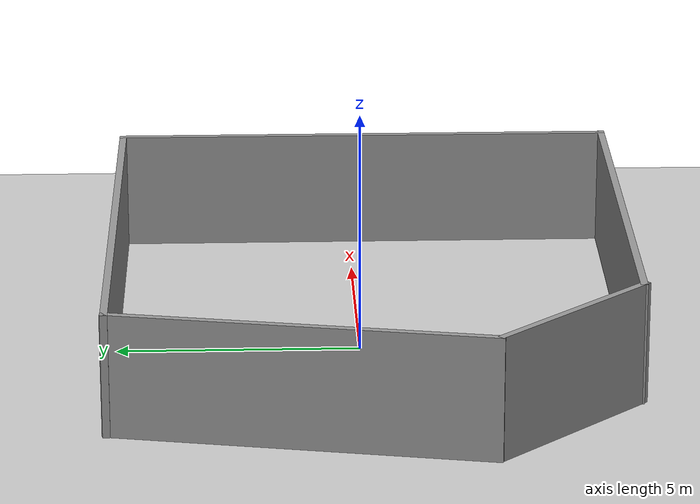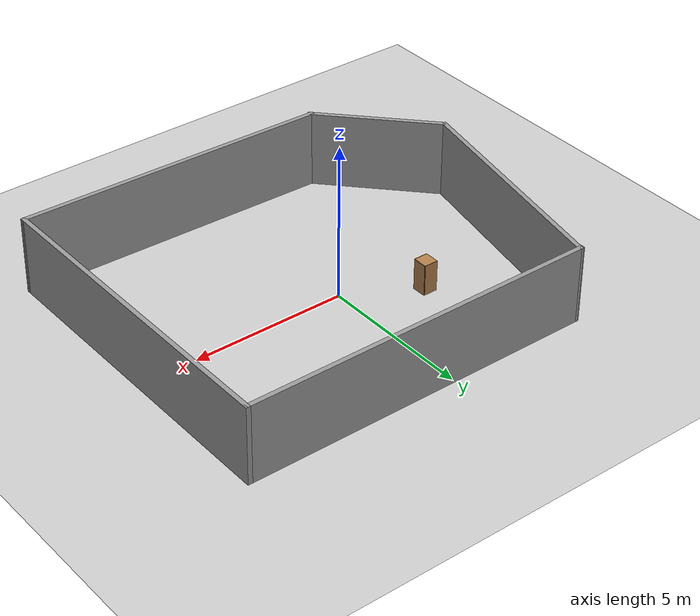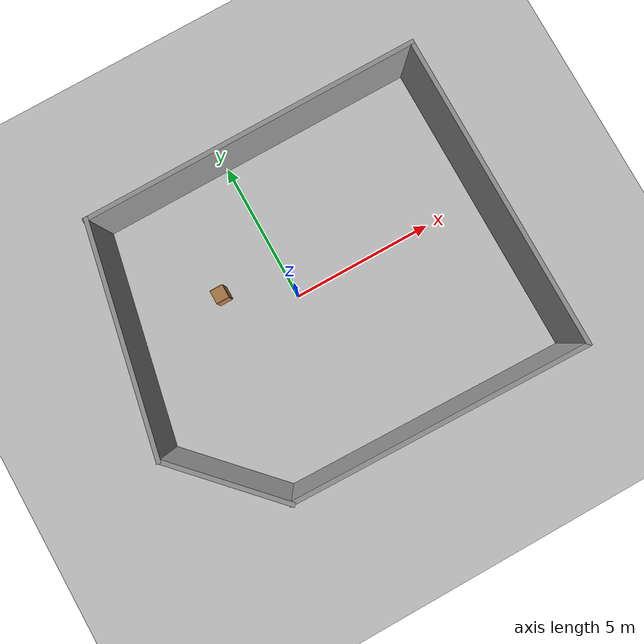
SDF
<sdf version="1.7">
 <world name="default">
  <light name="sun" type="directional">
   <pose>0 0 10 0 -0 0</pose>
   <diffuse>0.8 0.8 0.8 1</diffuse>
   <specular>0.2 0.2 0.2 1</specular>
   <attenuation>
    <range>1000</range>
    <constant>0.9</constant>
    <linear>0.01</linear>
    <quadratic>0.001</quadratic>
   </attenuation>
   <direction>-0.5 0.1 -0.9</direction>
   <spot><inner_angle>0</inner_angle><outer_angle>0</outer_angle><falloff>0</falloff></spot>
  </light>
  <model name="ground_plane">
   <static>1</static>
   <link name="link">
    <collision name="collision">
     <geometry><plane><normal>0 0 1</normal><size>100 100</size></plane></geometry>
     <surface><friction><ode><mu>100</mu><mu2>50</mu2></ode></friction></surface>
    </collision>
    <visual name="visual">
     <cast_shadows>0</cast_shadows>
     <geometry><plane><normal>0 0 1</normal><size>100 100</size></plane></geometry>
     <material>
      <script><uri>file://media/materials/scripts/gazebo.material</uri><name>Gazebo/Grey</name></script>
     </material>
    </visual>
   </link>
  </model>
  <gravity>0 0 -9.8</gravity>
  <magnetic_field>6e-06 2.3e-05 -4.2e-05</magnetic_field>
  <atmosphere type="adiabatic"/>
  <physics type="ode">
   <max_step_size>0.001</max_step_size>
   <real_time_factor>1</real_time_factor>
   <real_time_update_rate>1000</real_time_update_rate>
  </physics>
  <scene><ambient>0.4 0.4 0.4 1</ambient><background>0.7 0.7 0.7 1</background><shadows>1</shadows></scene>
  <spherical_coordinates>
   <surface_model>EARTH_WGS84</surface_model>
   <latitude_deg>0</latitude_deg>
   <longitude_deg>0</longitude_deg>
   <elevation>0</elevation>
   <heading_deg>0</heading_deg>
  </spherical_coordinates>
  <model name="assig3">
   <pose>0.419571 -0.312356 0 0 -0 0</pose>
   <link name="Wall_0">
    <collision name="Wall_0_Collision">
     <geometry><box><size>7.75358 0.15 2.5</size></box></geometry>
     <pose>0 0 1.25 0 -0 0</pose>
    </collision>
    <visual name="Wall_0_Visual">
     <pose>0 0 1.25 0 -0 0</pose>
     <geometry><box><size>7.75358 0.15 2.5</size></box></geometry>
     <material>
      <script><uri>file://media/materials/scripts/gazebo.material</uri><name>Gazebo/Grey</name></script>
      <ambient>1 1 1 1</ambient>
     </material>
     <meta><layer>0</layer></meta>
    </visual>
    <pose>-5.70139 1.6166 0 0 -0 1.37236</pose>
   </link>
   <link name="Wall_1">
    <collision name="Wall_1_Collision">
     <geometry><box><size>11.5949 0.15 2.5</size></box></geometry>
     <pose>0 0 1.25 0 -0 0</pose>
    </collision>
    <visual name="Wall_1_Visual">
     <pose>0 0 1.25 0 -0 0</pose>
     <geometry><box><size>11.5949 0.15 2.5</size></box></geometry>
     <material>
      <script><uri>file://media/materials/scripts/gazebo.material</uri><name>Gazebo/Grey</name></script>
      <ambient>1 1 1 1</ambient>
     </material>
     <meta><layer>0</layer></meta>
    </visual>
    <pose>0.739922 5.34379 0 0 -0 0</pose>
   </link>
   <link name="Wall_3">
    <collision name="Wall_3_Collision">
     <geometry><box><size>10.8491 0.15 2.5</size></box></geometry>
     <pose>0 0 1.25 0 -0 0</pose>
    </collision>
    <visual name="Wall_3_Visual">
     <pose>0 0 1.25 0 -0 0</pose>
     <geometry><box><size>10.8491 0.15 2.5</size></box></geometry>
     <material>
      <script><uri>file://media/materials/scripts/gazebo.material</uri><name>Gazebo/Grey</name></script>
      <ambient>1 1 1 1</ambient>
     </material>
     <meta><layer>0</layer></meta>
    </visual>
    <pose>6.46237 -0.005757 0 0 -0 -1.5708</pose>
   </link>
   <link name="Wall_4">
    <collision name="Wall_4_Collision">
     <geometry><box><size>10.2213 0.15 2.5</size></box></geometry>
     <pose>0 0 1.25 0 -0 0</pose>
    </collision>
    <visual name="Wall_4_Visual">
     <pose>0 0 1.25 0 -0 0</pose>
     <geometry><box><size>10.2213 0.15 2.5</size></box></geometry>
     <material>
      <script><uri>file://media/materials/scripts/gazebo.material</uri><name>Gazebo/Grey</name></script>
      <ambient>1 1 1 1</ambient>
     </material>
     <meta><layer>0</layer></meta>
    </visual>
    <pose>1.4282 -5.23294 0 0 -0 3.11729</pose>
   </link>
   <link name="Wall_5">
    <collision name="Wall_5_Collision">
     <geometry><box><size>4.28442 0.15 2.5</size></box></geometry>
     <pose>0 0 1.25 0 -0 0</pose>
    </collision>
    <visual name="Wall_5_Visual">
     <pose>0 0 1.25 0 -0 0</pose>
     <geometry><box><size>4.28442 0.15 2.5</size></box></geometry>
     <material>
      <script><uri>file://media/materials/scripts/gazebo.material</uri><name>Gazebo/Grey</name></script>
      <ambient>1 1 1 1</ambient>
     </material>
     <meta><layer>0</layer></meta>
    </visual>
    <pose>-4.99782 -3.64117 0 0 -0 2.32966</pose>
   </link>
   <static>1</static>
  </model>
  <model name="cabinet">
   <static>1</static>
   <link name="cabinet_bottom_plate">
    <inertial>
     <pose>0 0 -1 0 -0 0</pose>
     <inertia><ixx>2.05</ixx><ixy>0</ixy><ixz>0</ixz><iyy>2.05</iyy><iyz>0</iyz><izz>2.05</izz></inertia>
     <mass>25</mass>
    </inertial>
    <collision name="cabinet_bottom_plate_geom">
     <pose>0 0 0.01 0 -0 0</pose>
     <geometry><box><size>0.45 0.45 0.02</size></box></geometry>
    </collision>
    <visual name="cabinet_bottom_plate_geom_visual">
     <pose>0 0 0.01 0 -0 0</pose>
     <geometry><box><size>0.45 0.45 0.02</size></box></geometry>
     <material>
      <script><uri>file://media/materials/scripts/gazebo.material</uri><name>Gazebo/Wood</name></script>
     </material>
    </visual>
    <collision name="cabinet_bottom_plate_geom_cabinet_back_plate">
     <pose>0.235 0 0.51 0 -0 0</pose>
     <geometry><box><size>0.02 0.45 1.02</size></box></geometry>
    </collision>
    <visual name="cabinet_bottom_plate_geom_cabinet_back_plate_visual">
     <pose>0.235 0 0.51 0 -0 0</pose>
     <geometry><box><size>0.02 0.45 1.02</size></box></geometry>
     <material>
      <script><uri>file://media/materials/scripts/gazebo.material</uri><name>Gazebo/Wood</name></script>
     </material>
    </visual>
    <collision name="cabinet_bottom_plate_geom_cabinet_left_plate">
     <pose>0 0.235 0.51 0 -0 0</pose>
     <geometry><box><size>0.45 0.02 1.02</size></box></geometry>
    </collision>
    <visual name="cabinet_bottom_plate_geom_cabinet_left_plate_visual">
     <pose>0 0.235 0.51 0 -0 0</pose>
     <geometry><box><size>0.45 0.02 1.02</size></box></geometry>
     <material>
      <script><uri>file://media/materials/scripts/gazebo.material</uri><name>Gazebo/Wood</name></script>
     </material>
    </visual>
    <collision name="cabinet_bottom_plate_geom_cabinet_middle_plate">
     <pose>0 0 0.51 0 -0 0</pose>
     <geometry><box><size>0.45 0.45 0.02</size></box></geometry>
    </collision>
    <visual name="cabinet_bottom_plate_geom_cabinet_middle_plate_visual">
     <pose>0 0 0.51 0 -0 0</pose>
     <geometry><box><size>0.45 0.45 0.02</size></box></geometry>
     <material>
      <script><uri>file://media/materials/scripts/gazebo.material</uri><name>Gazebo/Wood</name></script>
     </material>
    </visual>
    <collision name="cabinet_bottom_plate_geom_cabinet_right_plate">
     <pose>0 -0.235 0.51 0 -0 0</pose>
     <geometry><box><size>0.45 0.02 1.02</size></box></geometry>
    </collision>
    <visual name="cabinet_bottom_plate_geom_cabinet_right_plate_visual">
     <pose>0 -0.235 0.51 0 -0 0</pose>
     <geometry><box><size>0.45 0.02 1.02</size></box></geometry>
     <material>
      <script><uri>file://media/materials/scripts/gazebo.material</uri><name>Gazebo/Wood</name></script>
     </material>
    </visual>
    <collision name="cabinet_bottom_plate_geom_cabinet_top_plate">
     <pose>0 0 1.01 0 -0 0</pose>
     <geometry><box><size>0.45 0.45 0.02</size></box></geometry>
    </collision>
    <visual name="cabinet_bottom_plate_geom_cabinet_top_plate_visual">
     <pose>0 0 1.01 0 -0 0</pose>
     <geometry><box><size>0.45 0.45 0.02</size></box></geometry>
     <material>
      <script><uri>file://media/materials/scripts/gazebo.material</uri><name>Gazebo/Wood</name></script>
     </material>
    </visual>
   </link>
   <pose>-2.21226 1.25104 0 0 -0 0</pose>
  </model>
 </world>
</sdf>
